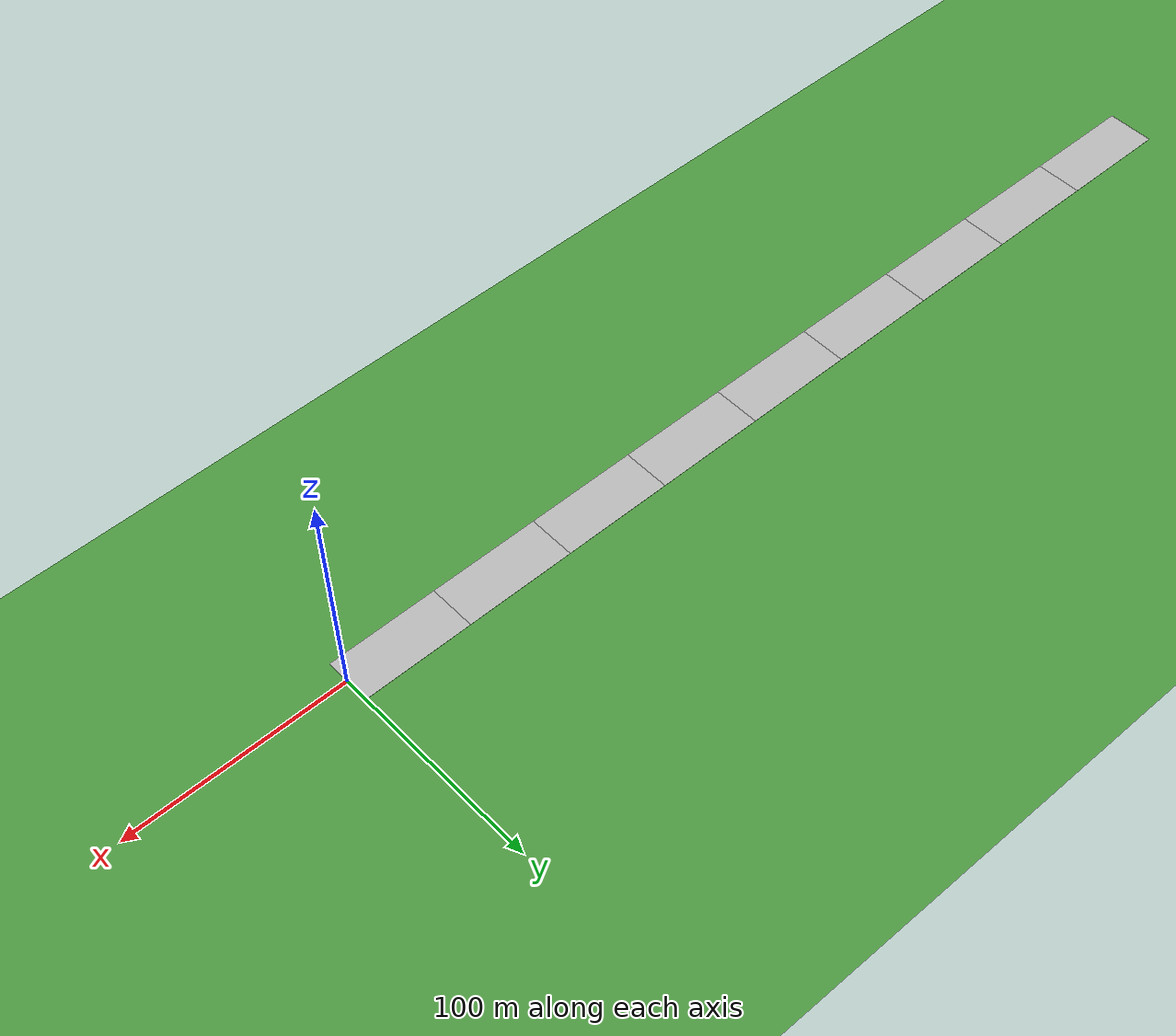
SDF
<sdf version="1.6">
 <world name="default">
  <model name="grass_plane">
   <static>1</static>
   <link name="link">
    <collision name="collision">
     <geometry><plane><normal>0 0 1</normal><size>1000 1000</size></plane></geometry>
     <surface><friction><ode><mu>100</mu><mu2>50</mu2></ode></friction></surface>
    </collision>
    <visual name="visual">
     <cast_shadows>0</cast_shadows>
     <geometry><plane><normal>0 0 1</normal><size>1000 1000</size></plane></geometry>
     <material>
      <script>
       <uri>model://ds_grass_background/materials/scripts</uri>
       <uri>model://ds_grass_background/materials/textures</uri>
       <name>GrassBackground</name>
      </script>
     </material>
    </visual>
   </link>
  </model>
  <model name="straight_4lane_50m_clone">
   <link name="link_0">
    <inertial>
     <mass>1</mass>
     <inertia>
      <ixx>0.166667</ixx>
      <ixy>0</ixy>
      <ixz>0</ixz>
      <iyy>0.166667</iyy>
      <iyz>0</iyz>
      <izz>0.166667</izz>
     </inertia>
    </inertial>
    <visual name="visual">
     <geometry>
      <mesh><uri>model://straight_4lane_50m/straight_4lane_50m.dae</uri><scale>1 1 1</scale></mesh>
     </geometry>
    </visual>
    <collision name="collision">
     <geometry>
      <mesh><uri>model://straight_4lane_50m/straight_4lane_50m.dae</uri><scale>1 1 1</scale></mesh>
     </geometry>
     <surface>
      <friction>
       <ode><mu>1</mu><mu2>1</mu2><fdir1>0 0 0</fdir1><slip1>0</slip1><slip2>0</slip2></ode>
       <torsional>
        <coefficient>1</coefficient>
        <patch_radius>0</patch_radius>
        <surface_radius>0</surface_radius>
        <use_patch_radius>1</use_patch_radius>
        <ode><slip>0</slip></ode>
       </torsional>
      </friction>
      <bounce><restitution_coefficient>0</restitution_coefficient><threshold>1e+06</threshold></bounce>
      <contact>
       <collide_without_contact>0</collide_without_contact>
       <collide_without_contact_bitmask>1</collide_without_contact_bitmask>
       <collide_bitmask>1</collide_bitmask>
       <ode>
        <soft_cfm>0</soft_cfm>
        <soft_erp>0.2</soft_erp>
        <kp>1e+13</kp>
        <kd>1</kd>
        <max_vel>0.01</max_vel>
        <min_depth>0</min_depth>
       </ode>
       <bullet>
        <split_impulse>1</split_impulse>
        <split_impulse_penetration_threshold>-0.01</split_impulse_penetration_threshold>
        <soft_cfm>0</soft_cfm>
        <soft_erp>0.2</soft_erp>
        <kp>1e+13</kp>
        <kd>1</kd>
       </bullet>
      </contact>
     </surface>
    </collision>
   </link>
   <static>1</static>
   <pose>-25 0 0 0 0 -1.5707</pose>
  </model>
  <model name="straight_4lane_50m_clone_0">
   <link name="link_0">
    <inertial>
     <mass>1</mass>
     <inertia>
      <ixx>0.166667</ixx>
      <ixy>0</ixy>
      <ixz>0</ixz>
      <iyy>0.166667</iyy>
      <iyz>0</iyz>
      <izz>0.166667</izz>
     </inertia>
    </inertial>
    <visual name="visual">
     <geometry>
      <mesh><uri>model://straight_4lane_50m/straight_4lane_50m.dae</uri><scale>1 1 1</scale></mesh>
     </geometry>
    </visual>
    <collision name="collision">
     <geometry>
      <mesh><uri>model://straight_4lane_50m/straight_4lane_50m.dae</uri><scale>1 1 1</scale></mesh>
     </geometry>
     <surface>
      <friction>
       <ode><mu>1</mu><mu2>1</mu2><fdir1>0 0 0</fdir1><slip1>0</slip1><slip2>0</slip2></ode>
       <torsional>
        <coefficient>1</coefficient>
        <patch_radius>0</patch_radius>
        <surface_radius>0</surface_radius>
        <use_patch_radius>1</use_patch_radius>
        <ode><slip>0</slip></ode>
       </torsional>
      </friction>
      <bounce><restitution_coefficient>0</restitution_coefficient><threshold>1e+06</threshold></bounce>
      <contact>
       <collide_without_contact>0</collide_without_contact>
       <collide_without_contact_bitmask>1</collide_without_contact_bitmask>
       <collide_bitmask>1</collide_bitmask>
       <ode>
        <soft_cfm>0</soft_cfm>
        <soft_erp>0.2</soft_erp>
        <kp>1e+13</kp>
        <kd>1</kd>
        <max_vel>0.01</max_vel>
        <min_depth>0</min_depth>
       </ode>
       <bullet>
        <split_impulse>1</split_impulse>
        <split_impulse_penetration_threshold>-0.01</split_impulse_penetration_threshold>
        <soft_cfm>0</soft_cfm>
        <soft_erp>0.2</soft_erp>
        <kp>1e+13</kp>
        <kd>1</kd>
       </bullet>
      </contact>
     </surface>
    </collision>
   </link>
   <static>1</static>
   <pose>-75 0 0 0 0 -1.5707</pose>
  </model>
  <model name="straight_4lane_50m_clone_2">
   <link name="link_0">
    <inertial>
     <mass>1</mass>
     <inertia>
      <ixx>0.166667</ixx>
      <ixy>0</ixy>
      <ixz>0</ixz>
      <iyy>0.166667</iyy>
      <iyz>0</iyz>
      <izz>0.166667</izz>
     </inertia>
    </inertial>
    <visual name="visual">
     <geometry>
      <mesh><uri>model://straight_4lane_50m/straight_4lane_50m.dae</uri><scale>1 1 1</scale></mesh>
     </geometry>
    </visual>
    <collision name="collision">
     <geometry>
      <mesh><uri>model://straight_4lane_50m/straight_4lane_50m.dae</uri><scale>1 1 1</scale></mesh>
     </geometry>
     <surface>
      <friction>
       <ode><mu>1</mu><mu2>1</mu2><fdir1>0 0 0</fdir1><slip1>0</slip1><slip2>0</slip2></ode>
       <torsional>
        <coefficient>1</coefficient>
        <patch_radius>0</patch_radius>
        <surface_radius>0</surface_radius>
        <use_patch_radius>1</use_patch_radius>
        <ode><slip>0</slip></ode>
       </torsional>
      </friction>
      <bounce><restitution_coefficient>0</restitution_coefficient><threshold>1e+06</threshold></bounce>
      <contact>
       <collide_without_contact>0</collide_without_contact>
       <collide_without_contact_bitmask>1</collide_without_contact_bitmask>
       <collide_bitmask>1</collide_bitmask>
       <ode>
        <soft_cfm>0</soft_cfm>
        <soft_erp>0.2</soft_erp>
        <kp>1e+13</kp>
        <kd>1</kd>
        <max_vel>0.01</max_vel>
        <min_depth>0</min_depth>
       </ode>
       <bullet>
        <split_impulse>1</split_impulse>
        <split_impulse_penetration_threshold>-0.01</split_impulse_penetration_threshold>
        <soft_cfm>0</soft_cfm>
        <soft_erp>0.2</soft_erp>
        <kp>1e+13</kp>
        <kd>1</kd>
       </bullet>
      </contact>
     </surface>
    </collision>
   </link>
   <static>1</static>
   <pose>-125 0 0 0 0 -1.5707</pose>
  </model>
  <model name="straight_4lane_50m_clone_3">
   <link name="link_0">
    <inertial>
     <mass>1</mass>
     <inertia>
      <ixx>0.166667</ixx>
      <ixy>0</ixy>
      <ixz>0</ixz>
      <iyy>0.166667</iyy>
      <iyz>0</iyz>
      <izz>0.166667</izz>
     </inertia>
    </inertial>
    <visual name="visual">
     <geometry>
      <mesh><uri>model://straight_4lane_50m/straight_4lane_50m.dae</uri><scale>1 1 1</scale></mesh>
     </geometry>
    </visual>
    <collision name="collision">
     <geometry>
      <mesh><uri>model://straight_4lane_50m/straight_4lane_50m.dae</uri><scale>1 1 1</scale></mesh>
     </geometry>
     <surface>
      <friction>
       <ode><mu>1</mu><mu2>1</mu2><fdir1>0 0 0</fdir1><slip1>0</slip1><slip2>0</slip2></ode>
       <torsional>
        <coefficient>1</coefficient>
        <patch_radius>0</patch_radius>
        <surface_radius>0</surface_radius>
        <use_patch_radius>1</use_patch_radius>
        <ode><slip>0</slip></ode>
       </torsional>
      </friction>
      <bounce><restitution_coefficient>0</restitution_coefficient><threshold>1e+06</threshold></bounce>
      <contact>
       <collide_without_contact>0</collide_without_contact>
       <collide_without_contact_bitmask>1</collide_without_contact_bitmask>
       <collide_bitmask>1</collide_bitmask>
       <ode>
        <soft_cfm>0</soft_cfm>
        <soft_erp>0.2</soft_erp>
        <kp>1e+13</kp>
        <kd>1</kd>
        <max_vel>0.01</max_vel>
        <min_depth>0</min_depth>
       </ode>
       <bullet>
        <split_impulse>1</split_impulse>
        <split_impulse_penetration_threshold>-0.01</split_impulse_penetration_threshold>
        <soft_cfm>0</soft_cfm>
        <soft_erp>0.2</soft_erp>
        <kp>1e+13</kp>
        <kd>1</kd>
       </bullet>
      </contact>
     </surface>
    </collision>
   </link>
   <static>1</static>
   <pose>-175 0 0 0 0 -1.5707</pose>
  </model>
  <model name="straight_4lane_50m_9">
   <link name="link_0">
    <inertial>
     <mass>1</mass>
     <inertia>
      <ixx>0.166667</ixx>
      <ixy>0</ixy>
      <ixz>0</ixz>
      <iyy>0.166667</iyy>
      <iyz>0</iyz>
      <izz>0.166667</izz>
     </inertia>
    </inertial>
    <visual name="visual">
     <geometry>
      <mesh><uri>model://straight_4lane_50m/straight_4lane_50m.dae</uri><scale>1 1 1</scale></mesh>
     </geometry>
    </visual>
    <collision name="collision">
     <geometry>
      <mesh><uri>model://straight_4lane_50m/straight_4lane_50m.dae</uri><scale>1 1 1</scale></mesh>
     </geometry>
     <surface>
      <friction>
       <ode><mu>1</mu><mu2>1</mu2><fdir1>0 0 0</fdir1><slip1>0</slip1><slip2>0</slip2></ode>
       <torsional>
        <coefficient>1</coefficient>
        <patch_radius>0</patch_radius>
        <surface_radius>0</surface_radius>
        <use_patch_radius>1</use_patch_radius>
        <ode><slip>0</slip></ode>
       </torsional>
      </friction>
      <bounce><restitution_coefficient>0</restitution_coefficient><threshold>1e+06</threshold></bounce>
      <contact>
       <collide_without_contact>0</collide_without_contact>
       <collide_without_contact_bitmask>1</collide_without_contact_bitmask>
       <collide_bitmask>1</collide_bitmask>
       <ode>
        <soft_cfm>0</soft_cfm>
        <soft_erp>0.2</soft_erp>
        <kp>1e+13</kp>
        <kd>1</kd>
        <max_vel>0.01</max_vel>
        <min_depth>0</min_depth>
       </ode>
       <bullet>
        <split_impulse>1</split_impulse>
        <split_impulse_penetration_threshold>-0.01</split_impulse_penetration_threshold>
        <soft_cfm>0</soft_cfm>
        <soft_erp>0.2</soft_erp>
        <kp>1e+13</kp>
        <kd>1</kd>
       </bullet>
      </contact>
     </surface>
    </collision>
   </link>
   <static>1</static>
   <pose>-225 0 0 0 0 -1.5707</pose>
  </model>
  <model name="straight_4lane_50m_10">
   <link name="link_0">
    <inertial>
     <mass>1</mass>
     <inertia>
      <ixx>0.166667</ixx>
      <ixy>0</ixy>
      <ixz>0</ixz>
      <iyy>0.166667</iyy>
      <iyz>0</iyz>
      <izz>0.166667</izz>
     </inertia>
    </inertial>
    <visual name="visual">
     <geometry>
      <mesh><uri>model://straight_4lane_50m/straight_4lane_50m.dae</uri><scale>1 1 1</scale></mesh>
     </geometry>
    </visual>
    <collision name="collision">
     <geometry>
      <mesh><uri>model://straight_4lane_50m/straight_4lane_50m.dae</uri><scale>1 1 1</scale></mesh>
     </geometry>
     <surface>
      <friction>
       <ode><mu>1</mu><mu2>1</mu2><fdir1>0 0 0</fdir1><slip1>0</slip1><slip2>0</slip2></ode>
       <torsional>
        <coefficient>1</coefficient>
        <patch_radius>0</patch_radius>
        <surface_radius>0</surface_radius>
        <use_patch_radius>1</use_patch_radius>
        <ode><slip>0</slip></ode>
       </torsional>
      </friction>
      <bounce><restitution_coefficient>0</restitution_coefficient><threshold>1e+06</threshold></bounce>
      <contact>
       <collide_without_contact>0</collide_without_contact>
       <collide_without_contact_bitmask>1</collide_without_contact_bitmask>
       <collide_bitmask>1</collide_bitmask>
       <ode>
        <soft_cfm>0</soft_cfm>
        <soft_erp>0.2</soft_erp>
        <kp>1e+13</kp>
        <kd>1</kd>
        <max_vel>0.01</max_vel>
        <min_depth>0</min_depth>
       </ode>
       <bullet>
        <split_impulse>1</split_impulse>
        <split_impulse_penetration_threshold>-0.01</split_impulse_penetration_threshold>
        <soft_cfm>0</soft_cfm>
        <soft_erp>0.2</soft_erp>
        <kp>1e+13</kp>
        <kd>1</kd>
       </bullet>
      </contact>
     </surface>
    </collision>
   </link>
   <static>1</static>
   <pose>-275 0 0 0 0 -1.5707</pose>
  </model>
  <model name="straight_4lane_50m_11">
   <link name="link_0">
    <inertial>
     <mass>1</mass>
     <inertia>
      <ixx>0.166667</ixx>
      <ixy>0</ixy>
      <ixz>0</ixz>
      <iyy>0.166667</iyy>
      <iyz>0</iyz>
      <izz>0.166667</izz>
     </inertia>
    </inertial>
    <visual name="visual">
     <geometry>
      <mesh><uri>model://straight_4lane_50m/straight_4lane_50m.dae</uri><scale>1 1 1</scale></mesh>
     </geometry>
    </visual>
    <collision name="collision">
     <geometry>
      <mesh><uri>model://straight_4lane_50m/straight_4lane_50m.dae</uri><scale>1 1 1</scale></mesh>
     </geometry>
     <surface>
      <friction>
       <ode><mu>1</mu><mu2>1</mu2><fdir1>0 0 0</fdir1><slip1>0</slip1><slip2>0</slip2></ode>
       <torsional>
        <coefficient>1</coefficient>
        <patch_radius>0</patch_radius>
        <surface_radius>0</surface_radius>
        <use_patch_radius>1</use_patch_radius>
        <ode><slip>0</slip></ode>
       </torsional>
      </friction>
      <bounce><restitution_coefficient>0</restitution_coefficient><threshold>1e+06</threshold></bounce>
      <contact>
       <collide_without_contact>0</collide_without_contact>
       <collide_without_contact_bitmask>1</collide_without_contact_bitmask>
       <collide_bitmask>1</collide_bitmask>
       <ode>
        <soft_cfm>0</soft_cfm>
        <soft_erp>0.2</soft_erp>
        <kp>1e+13</kp>
        <kd>1</kd>
        <max_vel>0.01</max_vel>
        <min_depth>0</min_depth>
       </ode>
       <bullet>
        <split_impulse>1</split_impulse>
        <split_impulse_penetration_threshold>-0.01</split_impulse_penetration_threshold>
        <soft_cfm>0</soft_cfm>
        <soft_erp>0.2</soft_erp>
        <kp>1e+13</kp>
        <kd>1</kd>
       </bullet>
      </contact>
     </surface>
    </collision>
   </link>
   <static>1</static>
   <pose>-325 0 0 0 0 -1.5707</pose>
  </model>
  <model name="straight_4lane_50m_12">
   <link name="link_0">
    <inertial>
     <mass>1</mass>
     <inertia>
      <ixx>0.166667</ixx>
      <ixy>0</ixy>
      <ixz>0</ixz>
      <iyy>0.166667</iyy>
      <iyz>0</iyz>
      <izz>0.166667</izz>
     </inertia>
    </inertial>
    <visual name="visual">
     <geometry>
      <mesh><uri>model://straight_4lane_50m/straight_4lane_50m.dae</uri><scale>1 1 1</scale></mesh>
     </geometry>
    </visual>
    <collision name="collision">
     <geometry>
      <mesh><uri>model://straight_4lane_50m/straight_4lane_50m.dae</uri><scale>1 1 1</scale></mesh>
     </geometry>
     <surface>
      <friction>
       <ode><mu>1</mu><mu2>1</mu2><fdir1>0 0 0</fdir1><slip1>0</slip1><slip2>0</slip2></ode>
       <torsional>
        <coefficient>1</coefficient>
        <patch_radius>0</patch_radius>
        <surface_radius>0</surface_radius>
        <use_patch_radius>1</use_patch_radius>
        <ode><slip>0</slip></ode>
       </torsional>
      </friction>
      <bounce><restitution_coefficient>0</restitution_coefficient><threshold>1e+06</threshold></bounce>
      <contact>
       <collide_without_contact>0</collide_without_contact>
       <collide_without_contact_bitmask>1</collide_without_contact_bitmask>
       <collide_bitmask>1</collide_bitmask>
       <ode>
        <soft_cfm>0</soft_cfm>
        <soft_erp>0.2</soft_erp>
        <kp>1e+13</kp>
        <kd>1</kd>
        <max_vel>0.01</max_vel>
        <min_depth>0</min_depth>
       </ode>
       <bullet>
        <split_impulse>1</split_impulse>
        <split_impulse_penetration_threshold>-0.01</split_impulse_penetration_threshold>
        <soft_cfm>0</soft_cfm>
        <soft_erp>0.2</soft_erp>
        <kp>1e+13</kp>
        <kd>1</kd>
       </bullet>
      </contact>
     </surface>
    </collision>
   </link>
   <static>1</static>
   <pose>-375 0 0 0 0 -1.5707</pose>
  </model>
  <model name="straight_4lane_50m_13">
   <link name="link_0">
    <inertial>
     <mass>1</mass>
     <inertia>
      <ixx>0.166667</ixx>
      <ixy>0</ixy>
      <ixz>0</ixz>
      <iyy>0.166667</iyy>
      <iyz>0</iyz>
      <izz>0.166667</izz>
     </inertia>
    </inertial>
    <visual name="visual">
     <geometry>
      <mesh><uri>model://straight_4lane_50m/straight_4lane_50m.dae</uri><scale>1 1 1</scale></mesh>
     </geometry>
    </visual>
    <collision name="collision">
     <geometry>
      <mesh><uri>model://straight_4lane_50m/straight_4lane_50m.dae</uri><scale>1 1 1</scale></mesh>
     </geometry>
     <surface>
      <friction>
       <ode><mu>1</mu><mu2>1</mu2><fdir1>0 0 0</fdir1><slip1>0</slip1><slip2>0</slip2></ode>
       <torsional>
        <coefficient>1</coefficient>
        <patch_radius>0</patch_radius>
        <surface_radius>0</surface_radius>
        <use_patch_radius>1</use_patch_radius>
        <ode><slip>0</slip></ode>
       </torsional>
      </friction>
      <bounce><restitution_coefficient>0</restitution_coefficient><threshold>1e+06</threshold></bounce>
      <contact>
       <collide_without_contact>0</collide_without_contact>
       <collide_without_contact_bitmask>1</collide_without_contact_bitmask>
       <collide_bitmask>1</collide_bitmask>
       <ode>
        <soft_cfm>0</soft_cfm>
        <soft_erp>0.2</soft_erp>
        <kp>1e+13</kp>
        <kd>1</kd>
        <max_vel>0.01</max_vel>
        <min_depth>0</min_depth>
       </ode>
       <bullet>
        <split_impulse>1</split_impulse>
        <split_impulse_penetration_threshold>-0.01</split_impulse_penetration_threshold>
        <soft_cfm>0</soft_cfm>
        <soft_erp>0.2</soft_erp>
        <kp>1e+13</kp>
        <kd>1</kd>
       </bullet>
      </contact>
     </surface>
    </collision>
   </link>
   <static>1</static>
   <pose>-425 0 0 0 0 -1.5707</pose>
  </model>
 </world>
</sdf>
